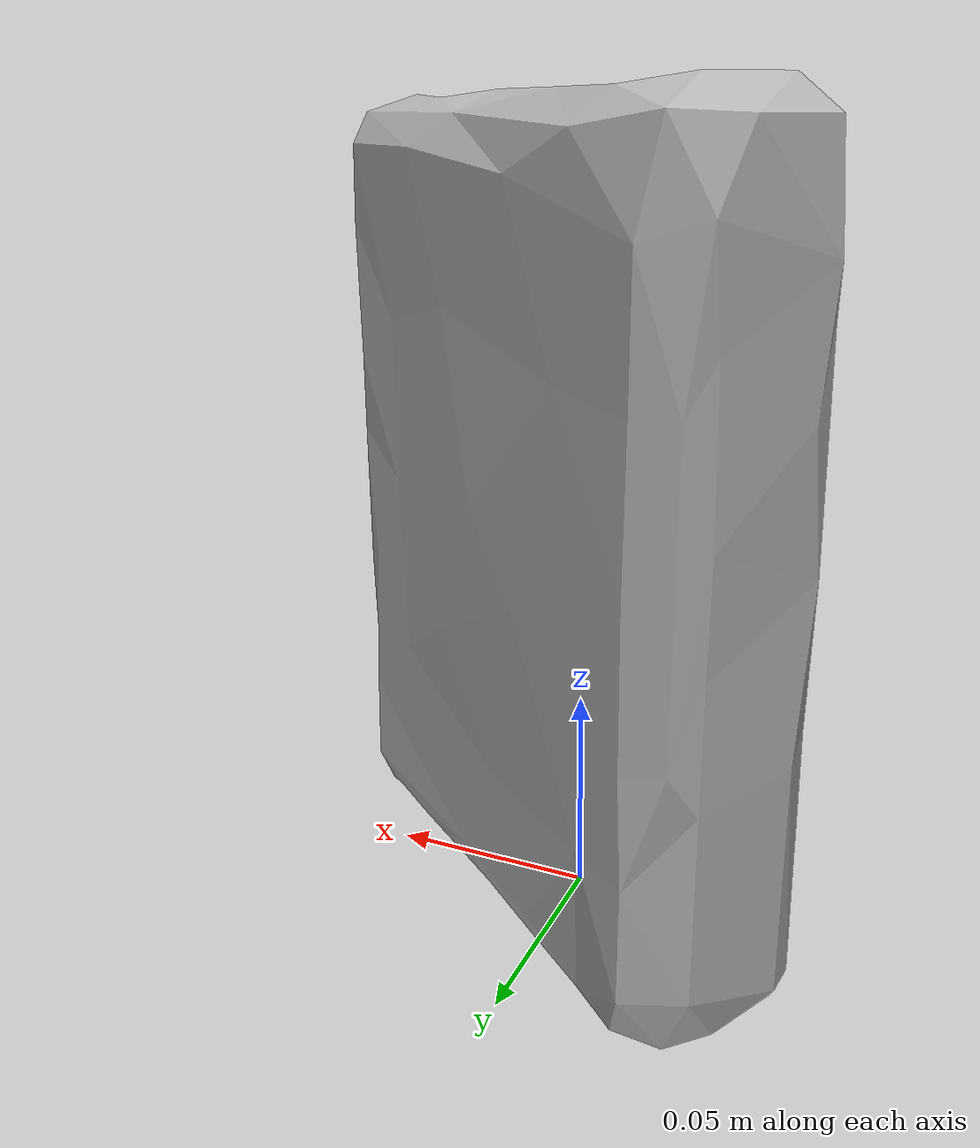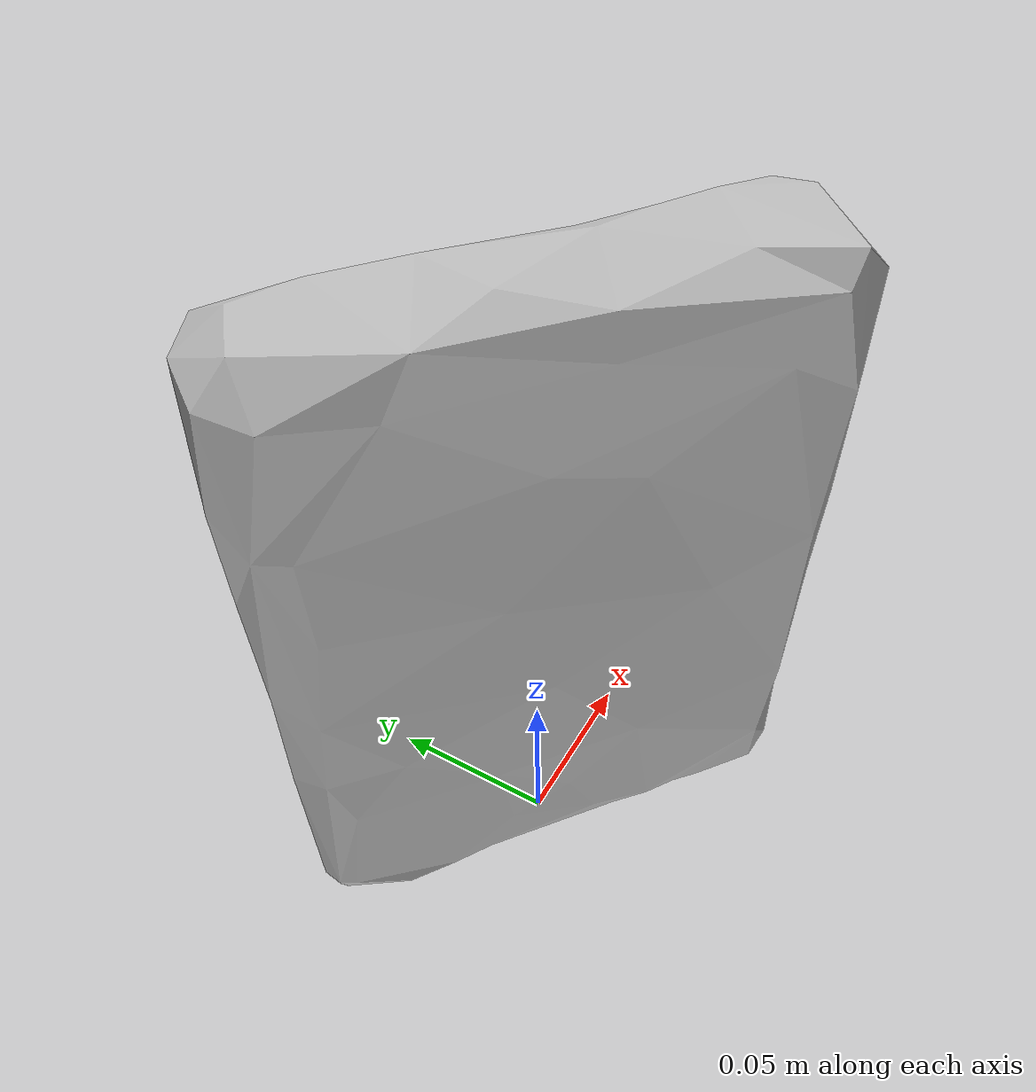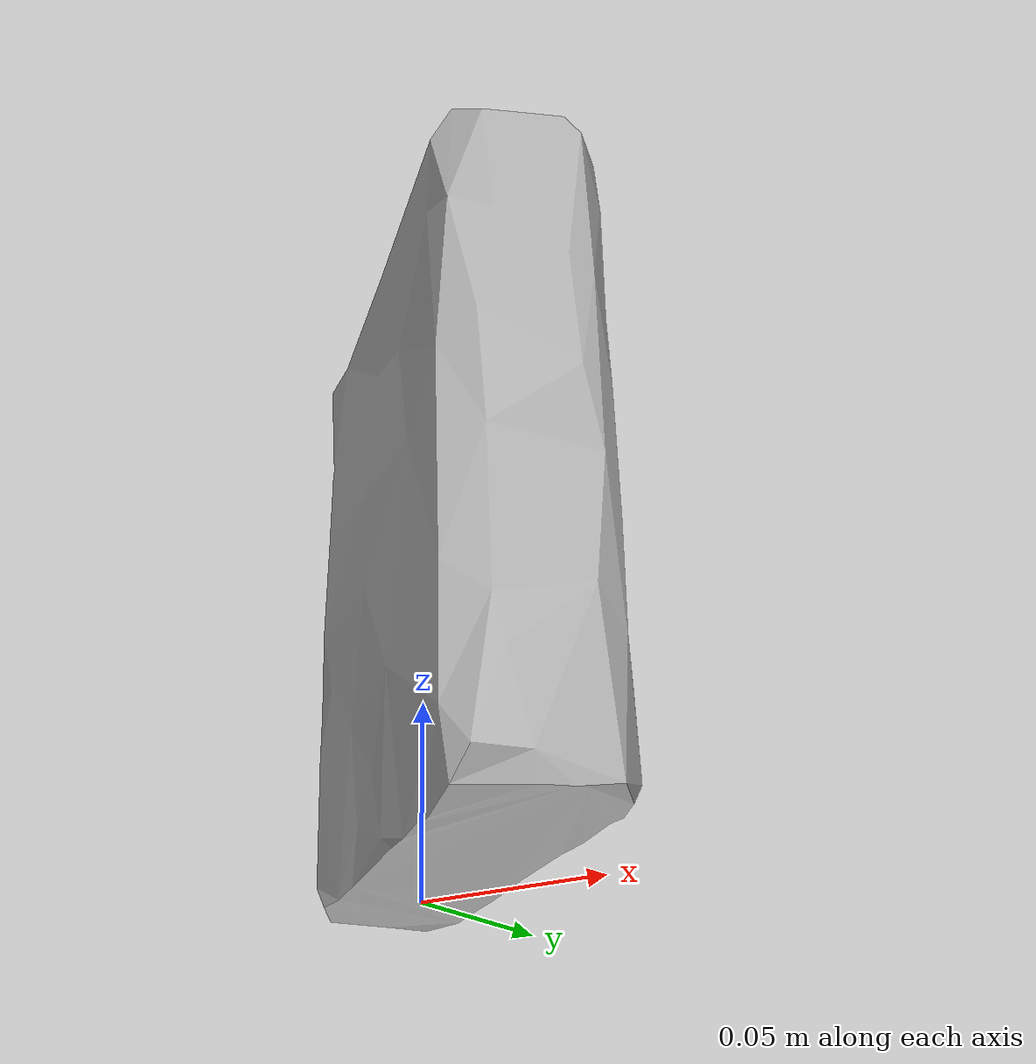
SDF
<?xml version='1.0'?>
<sdf version="1.4">
  <model name="gushers_tropical_flavors">
    <static>false</static>
    <link name="link">
      <inertial>
        <pose>0.007997432958996433 0.0019043659981749306 0.09330269294248969 -3.13817092282158 0.003805993029444099 -2.2513708906840977</pose>
        <mass>0.1285272016854804</mass>
        <inertia>
          <ixx>0.0005808715550113447</ixx>
          <ixy>-3.994887770606678e-20</ixy>
          <ixz>-1.4159507705049146e-22</ixz>
          <iyy>0.00037294526187731135</iyy>
          <iyz>-1.8248834864465464e-22</iyz>
          <izz>0.00025608090212305155</izz>
        </inertia>
      </inertial>
      <collision name="collision">
        <geometry>
          <mesh>
            <!-- Use a downsampled mesh for collisions -->
            <uri>model:///gushers_tropical_flavors/gushers_tropical_flavors_250_collision.obj</uri>
	        </mesh>
        </geometry>
        <surface>
      </surface>
      </collision>
      <visual name="visual">
        <geometry>
          <mesh>
            <uri>model:///gushers_tropical_flavors/optimized_tsdf_texture_mapped_mesh.obj</uri>
	        </mesh>
        </geometry>
        <material>
          <script>
            <uri>model:///gushers_tropical_flavors/gushers_tropical_flavors.material</uri>
            <name>gushers_tropical_flavors</name>
          </script>
        </material>
      </visual>
    </link>
  </model>
</sdf>
